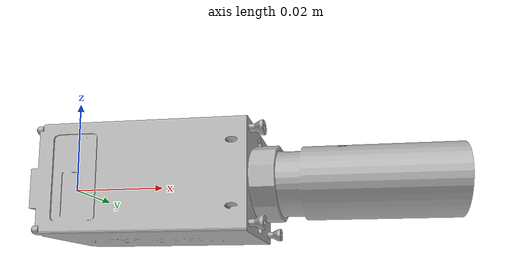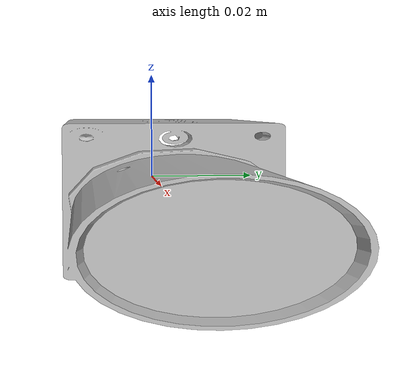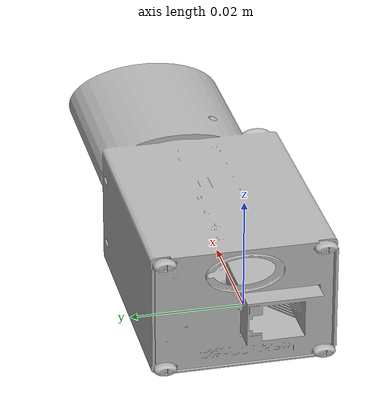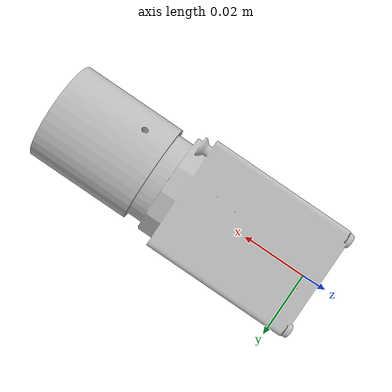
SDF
<?xml version='1.0'?>
<sdf version='1.6'>
  <model name='april_tags_camera'>
    <static>true</static>
    <pose>0 0 0 0 0 0</pose>
    <link name='april_camera_link'>
      <visual name='visual'>
        <geometry>
        <mesh>
          <uri>model://april_tags_camera/meshes/scaled_lens.stl</uri>
        </mesh>
        </geometry>
      </visual>
      <sensor name='my_camera' type='camera'>
        <pose>0.2 0 0 -1.577 0 0</pose>
        <camera>
          <horizontal_fov>1.0472</horizontal_fov> <!-- 60.0 degrees-->
          <image>
            <width>680</width>
            <height>480</height>
          </image>
          <clip>
            <near>0.1</near>
            <far>100</far>
          </clip>
        </camera>
        <always_on>1</always_on>
        <update_rate>30</update_rate>

          <plugin name="april_tag_camera_controller" filename="libgazebo_ros_camera.so">
            <alwaysOn>true</alwaysOn>
            <updateRate>60</updateRate>
            <cameraName>april_tag_camera</cameraName>
            <imageTopicName>april_camera_image_raw</imageTopicName>
            <cameraInfoTopicName>camera_info</cameraInfoTopicName>
            <frameName>april_camera_link</frameName>
            <hackBaseline>0.07</hackBaseline>
            <distortionK1>0.0</distortionK1>
            <distortionK2>0.0</distortionK2>
            <distortionK3>0.0</distortionK3>
            <distortionT1>0.0</distortionT1>
            <distortionT2>0.0</distortionT2>
          </plugin>
      </sensor>
    </link>
  </model>
</sdf>
